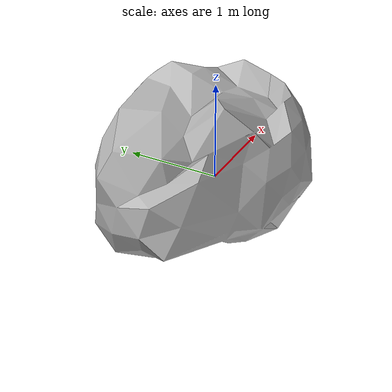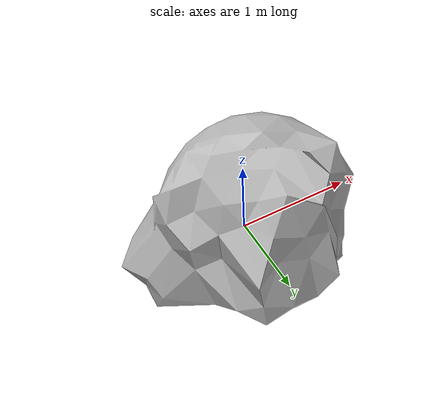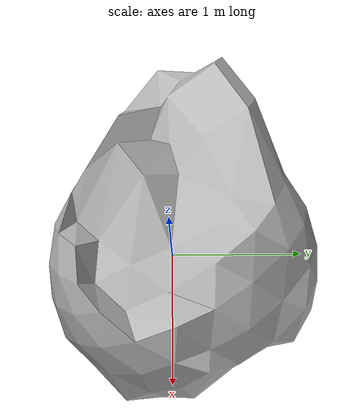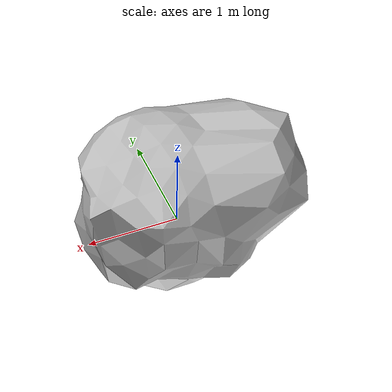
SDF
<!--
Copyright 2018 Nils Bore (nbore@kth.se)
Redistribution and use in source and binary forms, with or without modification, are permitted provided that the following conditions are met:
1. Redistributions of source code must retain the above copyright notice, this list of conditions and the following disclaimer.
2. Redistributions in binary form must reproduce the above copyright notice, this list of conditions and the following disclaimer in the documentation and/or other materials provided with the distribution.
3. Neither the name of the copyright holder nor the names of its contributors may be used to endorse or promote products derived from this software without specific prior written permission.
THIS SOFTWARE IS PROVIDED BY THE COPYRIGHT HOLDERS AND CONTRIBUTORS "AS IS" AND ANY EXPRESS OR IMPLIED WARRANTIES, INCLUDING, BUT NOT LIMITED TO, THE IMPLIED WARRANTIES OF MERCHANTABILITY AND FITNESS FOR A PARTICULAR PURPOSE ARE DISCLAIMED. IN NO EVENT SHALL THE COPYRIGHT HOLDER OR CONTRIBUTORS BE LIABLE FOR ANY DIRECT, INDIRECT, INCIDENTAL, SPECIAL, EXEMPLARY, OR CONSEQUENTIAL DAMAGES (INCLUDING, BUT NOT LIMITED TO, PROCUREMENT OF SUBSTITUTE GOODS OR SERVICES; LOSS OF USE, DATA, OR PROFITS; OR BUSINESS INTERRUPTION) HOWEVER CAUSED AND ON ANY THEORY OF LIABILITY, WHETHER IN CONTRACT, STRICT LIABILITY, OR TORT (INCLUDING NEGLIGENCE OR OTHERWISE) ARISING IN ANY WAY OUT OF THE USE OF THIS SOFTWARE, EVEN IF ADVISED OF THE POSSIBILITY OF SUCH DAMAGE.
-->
<?xml version="1.0" ?>
<sdf version="1.5">
  <model name="large_rock">
    <static>true</static>
    <link name="link">
      <collision name="large_rock_collision">
        <pose>0 0 0 0 0 0</pose>
        <geometry>
          <mesh><uri>model://large_rock/meshes/large_rock_collision.stl</uri></mesh>
        </geometry>
        <laser_retro>200</laser_retro>
      </collision>

      <visual name="large_rock_visual">
        <cast_shadows>true</cast_shadows>
        <pose>0 0 0 0 0 0</pose>
        <geometry>
          <mesh><uri>model://large_rock/meshes/large_rock.dae</uri></mesh>
        </geometry>
        <laser_retro>200</laser_retro>
      </visual>
    </link>
  </model>
</sdf>
